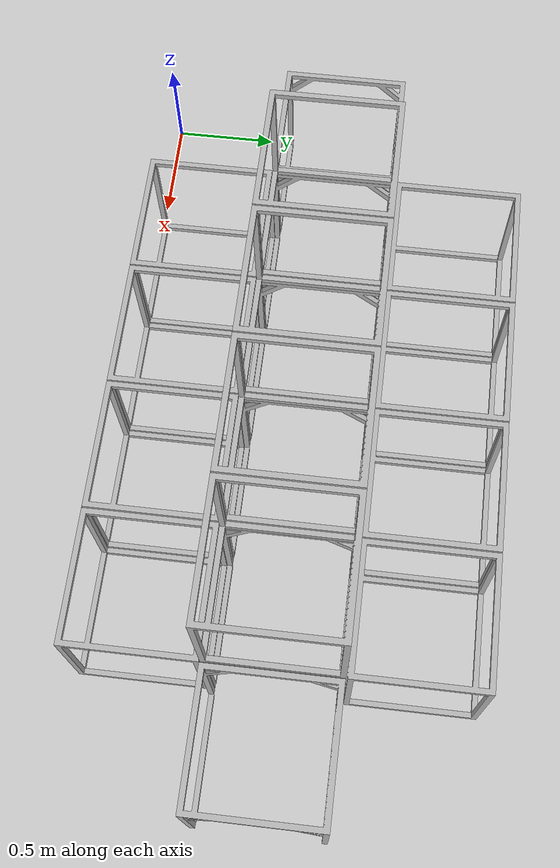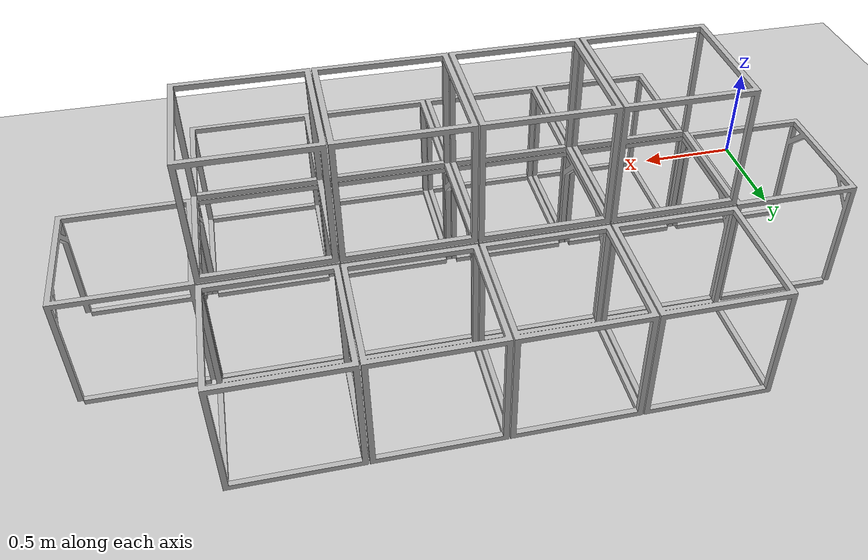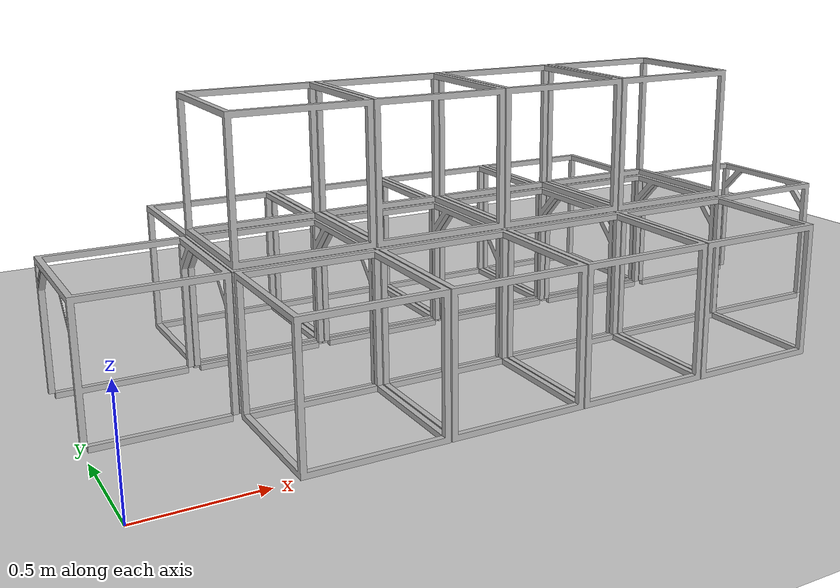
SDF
<sdf version="1.4">
 <world name="default">
  <include><uri>model://ground_plane</uri></include>
  <include><uri>model://sun</uri></include>
  <model name="cube1">
   <pose>0.6 0 0  0 0 0</pose>
   <static>true</static>
   <link name="cube1">
    <visual name="visual">
     <geometry><mesh><uri>file://scube.dae</uri><scale>1 1 1</scale></mesh></geometry>
    </visual>
   </link>
  </model>
  <model name="cube2">
   <pose>1.2 0 0  0 0 0</pose>
   <static>true</static>
   <link name="cube2">
    <visual name="visual">
     <geometry><mesh><uri>file://scube.dae</uri><scale>1 1 1</scale></mesh></geometry>
    </visual>
   </link>
  </model>
  <model name="cube3">
   <pose>1.8 0 0  0 0 0</pose>
   <static>true</static>
   <link name="cube3">
    <visual name="visual">
     <geometry><mesh><uri>file://scube.dae</uri><scale>1 1 1</scale></mesh></geometry>
    </visual>
   </link>
  </model>
  <model name="cube4">
   <pose>2.4 0 0 0 0 0</pose>
   <static>true</static>
   <link name="cube4">
    <visual name="visual">
     <geometry><mesh><uri>file://scube.dae</uri><scale>1 1 1</scale></mesh></geometry>
    </visual>
   </link>
  </model>
  <model name="cube5">
   <pose>0.6 1.2 0  0 0 0</pose>
   <static>true</static>
   <link name="cube5">
    <visual name="visual">
     <geometry><mesh><uri>file://scube.dae</uri><scale>1 1 1</scale></mesh></geometry>
    </visual>
   </link>
  </model>
  <model name="cube6">
   <pose>1.2 1.2 0 0 0 0</pose>
   <static>true</static>
   <link name="cube6">
    <visual name="visual">
     <geometry><mesh><uri>file://scube.dae</uri><scale>1 1 1</scale></mesh></geometry>
    </visual>
   </link>
  </model>
  <model name="cube7">
   <pose>1.8 1.2 0  0 0 0</pose>
   <static>true</static>
   <link name="cube7">
    <visual name="visual">
     <geometry><mesh><uri>file://scube.dae</uri><scale>1 1 1</scale></mesh></geometry>
    </visual>
   </link>
  </model>
  <model name="cube8">
   <pose>2.4 1.2 0  0 0 0</pose>
   <static>true</static>
   <link name="cube8">
    <visual name="visual">
     <geometry><mesh><uri>file://scube.dae</uri><scale>1 1 1</scale></mesh></geometry>
    </visual>
   </link>
  </model>
  <model name="cube9">
   <pose>0 0.6 0  0 0 0</pose>
   <static>true</static>
   <link name="cube9">
    <visual name="visual">
     <geometry><mesh><uri>file://tcube.dae</uri><scale>1 1 1</scale></mesh></geometry>
    </visual>
   </link>
  </model>
  <model name="cube10">
   <pose>0.6 0.6 0  0 0 0</pose>
   <static>true</static>
   <link name="cube10">
    <visual name="visual">
     <geometry><mesh><uri>file://tcube.dae</uri><scale>1 1 1</scale></mesh></geometry>
    </visual>
   </link>
  </model>
  <model name="cube11">
   <pose>1.2 0.6 0  0 0 0</pose>
   <static>true</static>
   <link name="cube11">
    <visual name="visual">
     <geometry><mesh><uri>file://tcube.dae</uri><scale>1 1 1</scale></mesh></geometry>
    </visual>
   </link>
  </model>
  <model name="cube12">
   <pose>1.8 0.6 0  0 0 0</pose>
   <static>true</static>
   <link name="cube12">
    <visual name="visual">
     <geometry><mesh><uri>file://tcube.dae</uri><scale>1 1 1</scale></mesh></geometry>
    </visual>
   </link>
  </model>
  <model name="cube13">
   <pose>2.4 0.6 0  0 0 0</pose>
   <static>true</static>
   <link name="cube13">
    <visual name="visual">
     <geometry><mesh><uri>file://tcube.dae</uri><scale>1 1 1</scale></mesh></geometry>
    </visual>
   </link>
  </model>
  <model name="cube14">
   <pose>3.0 0.6 0  0 0 0</pose>
   <static>true</static>
   <link name="cube14">
    <visual name="visual">
     <geometry><mesh><uri>file://tcube.dae</uri><scale>1 1 1</scale></mesh></geometry>
    </visual>
   </link>
  </model>
  <model name="cube19">
   <pose>0.6 0.6 0.6  0 0 0</pose>
   <static>true</static>
   <link name="cube19">
    <visual name="visual">
     <geometry><mesh><uri>file://scube.dae</uri><scale>1 1 1</scale></mesh></geometry>
    </visual>
   </link>
  </model>
  <model name="cube20">
   <pose>1.2 0.6 0.6  0 0 0</pose>
   <static>true</static>
   <link name="cube20">
    <visual name="visual">
     <geometry><mesh><uri>file://scube.dae</uri><scale>1 1 1</scale></mesh></geometry>
    </visual>
   </link>
  </model>
  <model name="cube21">
   <pose>1.8 0.6 0.6  0 0 0</pose>
   <static>true</static>
   <link name="cube21">
    <visual name="visual">
     <geometry><mesh><uri>file://scube.dae</uri><scale>1 1 1</scale></mesh></geometry>
    </visual>
   </link>
  </model>
  <model name="cube22">
   <pose>2.4 0.6 0.6  0 0 0</pose>
   <static>true</static>
   <link name="cube22">
    <visual name="visual">
     <geometry><mesh><uri>file://scube.dae</uri><scale>1 1 1</scale></mesh></geometry>
    </visual>
   </link>
  </model>
 </world>
</sdf>
